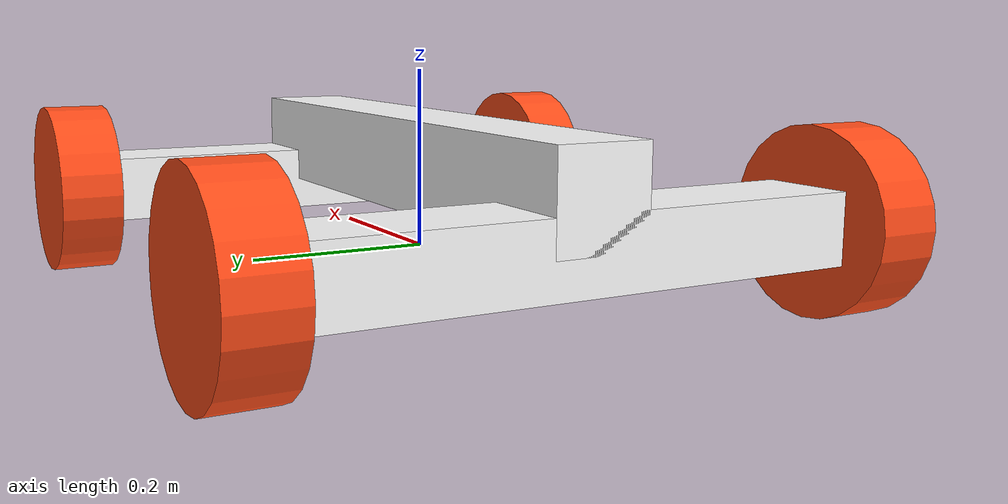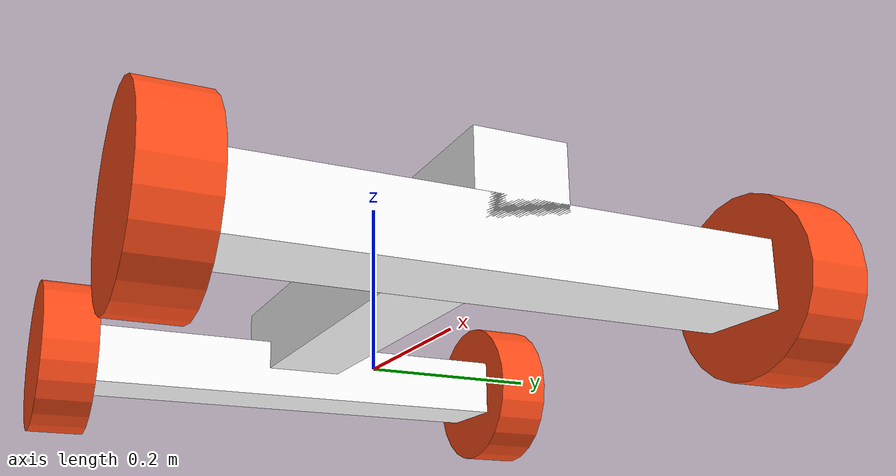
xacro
<?xml version="1.0"?>
<robot xmlns:xacro="http://www.ros.org/wiki/xacro">

    <xacro:include filename="inertial_macros.xacro"/>

    <material name="white">
        <color rgba="1 1 1 1"/>
    </material>

    <material name="black">
        <color rgba="0 0 0 1"/>
    </material>

    <material name="orange">
        <color rgba="1 0.3 0.1 1"/>
    </material>

    <material name="red">
        <color rgba="1 0 0 1"/>
    </material>

    <link name="dummy"/>

    <joint name="base_footprint_joint" type="fixed">
        <parent link="dummy"/>
        <child link="base_footprint"/>
        <origin xyz="0 0 0.0" rpy="0 0 0"/>
    </joint>

    <link name="base_footprint">
    </link>

    <joint name="base" type="fixed">
        <parent link="dummy"/>
        <child link="base_link"/>
        <origin xyz="0 0 0.05" rpy="0 0 0"/>
    </joint>

    <link name="base_link">
        <visual>
            <origin xyz= "0 0 0.05"/>
            <geometry>
                <box size="0.7 0.1 0.10"/>
            </geometry>
            <material name="white"/>
        </visual>
        <collision>
            <origin xyz= "0 0 0.05"/>
            <geometry>
                <box size="0.7 0.1 0.10"/>
            </geometry>
        </collision>
        <xacro:inertial_box mass="0.2" x="0.7" y="0.1" z="0.10">
            <origin xyz= "0 0 0.05" rpy="0 0 0"/>
        </xacro:inertial_box>
    </link>

    <joint name="front_axle_joint" type="fixed">
        <parent link="base_link"/>
        <child link="front_axle"/>
        <origin xyz="0.30 0 0"/>
    </joint>

    <joint name="back_axle_joint" type="fixed">
        <parent link="base_link"/>
        <child link="back_axle"/>
        <origin xyz="-0.30 0 0"/>
    </joint>

    <link name="back_axle">
        <visual>
            <origin xyz= "0 0 0"/>
            <geometry>
                <box size="0.1 0.6 0.075"/>
            </geometry>
            <material name="white"/>
        </visual>
        <collision>
            <origin xyz= "0 0 0"/>
            <geometry>
                <box size="0.1 0.6 0.075"/>
            </geometry>
        </collision>
        <xacro:inertial_box mass="2" x="0.2" y="0.6" z="0.075">
            <origin xyz= "0 0 0" rpy="0 0 0"/>
        </xacro:inertial_box>
    </link>

    <link name="front_axle">
        <visual>
            <origin xyz= "0 0 0"/>
            <geometry>
                <box size="0.1 0.6 0.075"/>
            </geometry>
            <material name="white"/>
        </visual>
        <collision>
            <origin xyz= "0 0 0"/>
            <geometry>
                <box size="0.1 0.6 0.075"/>
            </geometry>
        </collision>
        <xacro:inertial_box mass="0.2" x="0.1" y="0.6" z="0.075">
            <origin xyz= "0 0 0" rpy="0 0 0"/>
        </xacro:inertial_box>
    </link>

    <joint name="back_left_joint" type="continuous">
        <parent link="back_axle"/>
        <child link="back_left_wheel"/>
        <origin xyz="0 0.325 0" rpy="-${pi/2} 0.0 0.0"/>
        <axis xyz="0 0 1"/>
    </joint>

    <link name="back_left_wheel">
        <visual>
            <geometry>
                <cylinder radius="0.1" length="0.07"/>
            </geometry>
            <material name="orange"/>
        </visual>
        <collision>
            <geometry>
                <cylinder radius="0.1" length="0.07"/>
            </geometry>
            <material name="orange"/>
        </collision>
        <xacro:inertial_cylinder mass="0.1" radius="0.1" length="0.07">
            <origin xyz= "0 0 0" rpy="0 0 0"/>
        </xacro:inertial_cylinder>
    </link>

    <joint name="back_right_joint" type="continuous">
        <parent link="back_axle"/>
        <child link="back_right_wheel"/>
        <origin xyz="0 -0.325 0" rpy="${pi/2} 0.0 0.0"/>
        <axis xyz="0 0 -1"/>
    </joint>

    <link name="back_right_wheel">
        <visual>
            <geometry>
                <cylinder radius="0.1" length="0.07"/>
            </geometry>
            <material name="orange"/>
        </visual>
        <collision>
            <geometry>
                <cylinder radius="0.1" length="0.07"/>
            </geometry>
        </collision>
        <xacro:inertial_cylinder mass="0.1" radius="0.1" length="0.07">
            <origin xyz= "0 0 0" rpy="0 0 0"/>
        </xacro:inertial_cylinder>
    </link>

    <joint name="front_left_joint" type="continuous">
        <parent link="front_axle"/>
        <child link="front_left_wheel"/>
        <origin xyz="0 0.325 0" rpy="-${pi/2} 0.0 0.0"/>
        <axis xyz="0 0 1"/>
    </joint>

    <link name="front_left_wheel">
        <visual>
            <geometry>
                <cylinder radius="0.1" length="0.07"/>
            </geometry>
            <material name="orange"/>
        </visual>
        <collision>
            <geometry>
                <cylinder radius="0.1" length="0.07"/>
            </geometry>
        </collision>
        <xacro:inertial_cylinder mass="0.1" radius="0.1" length="0.07">
            <origin xyz= "0 0 0" rpy="0 0 0"/>
        </xacro:inertial_cylinder>
    </link>

    <joint name="front_right_joint" type="continuous">
        <parent link="front_axle"/>
        <child link="front_right_wheel"/>
        <origin xyz="0 -0.325 0" rpy="${pi/2} 0.0 0.0"/>
        <axis xyz="0 0 -1"/>
        <limit effort="50000" velocity="10"/>

    </joint>

    <link name="front_right_wheel">
        <visual>
            <geometry>
                <cylinder radius="0.1" length="0.07"/>
            </geometry>
            <material name="orange"/>
        </visual>
        <collision>
            <geometry>
                <cylinder radius="0.1" length="0.07"/>
            </geometry>
        </collision>
        <xacro:inertial_cylinder mass="0.1" radius="0.1" length="0.07">
            <origin xyz= "0 0 0" rpy="0 0 0"/>
        </xacro:inertial_cylinder>
    </link>

</robot>
